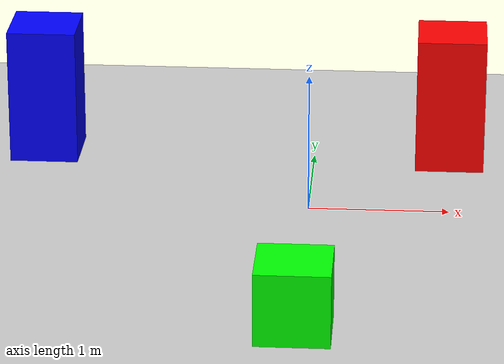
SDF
<?xml version="1.0"?>
<sdf version="1.6">
  <world name="custom_world">
    <!-- Light -->
    <light name="custom_light" type="point">
      <pose>1 1 3 0 0 0</pose>
      <diffuse>1 1 1 1</diffuse>
      <specular>0.1 0.1 0.1 1</specular>
      <attenuation>
        <range>10</range>
        <constant>0.1</constant>
        <linear>0.1</linear>
        <quadratic>0.01</quadratic>
      </attenuation>
    </light>

    <!-- Sun -->
    <include>
      <uri>model://sun</uri>
    </include>

    <!-- Ground -->
    <include>
      <uri>model://ground_plane</uri>
    </include>

    <!-- Gravity -->
    <physics type="ode">
      <gravity>0 0 -9.8</gravity>
    </physics>

     <!-- Obstacle (red) -->
    <model name="cube_obstacle_1">
      <pose>1 1 0.5 0 0 0</pose>
      <link name="link">
        <visual name="visual">
          <geometry>
            <box>
              <size>0.5 0.5 1.0</size>
            </box>
          </geometry>
          <material>
            <ambient>1 0 0 1</ambient>
            <diffuse>1 0 0 1</diffuse>
          </material>
        </visual>
        <collision name="collision">
          <geometry>
            <box>
              <size>0.5 0.5 1.0</size>
            </box>
          </geometry>
        </collision>
      </link>
    </model>

    <!-- Obstacle #2 (blue) -->
    <model name="cube_obstacle_2">
      <pose>-2 1 0.5 0 0 0</pose>
      <link name="link">
        <visual name="visual">
          <geometry>
            <box>
              <size>0.5 0.5 1.0</size>
            </box>
          </geometry>
          <material>
            <ambient>0 0 1 1</ambient>
            <diffuse>0 0 1 1</diffuse>
          </material>
        </visual>
        <collision name="collision">
          <geometry>
            <box>
              <size>0.5 0.5 1.0</size>
            </box>
          </geometry>
        </collision>
      </link>
    </model>

    <!-- Obstacle #3 (green) -->
    <model name="cube_obstacle_3">
      <pose>0 -2 0.25 0 0 0</pose>
      <link name="link">
        <visual name="visual">
          <geometry>
            <box>
              <size>0.5 0.5 0.5</size>
            </box>
          </geometry>
          <material>
            <ambient>0 1 0 1</ambient>
            <diffuse>0 1 0 1</diffuse>
          </material>
        </visual>
        <collision name="collision">
          <geometry>
            <box>
              <size>0.5 0.5 0.5</size>
            </box>
          </geometry>
        </collision>
      </link>
    </model>
  </world>
</sdf>
